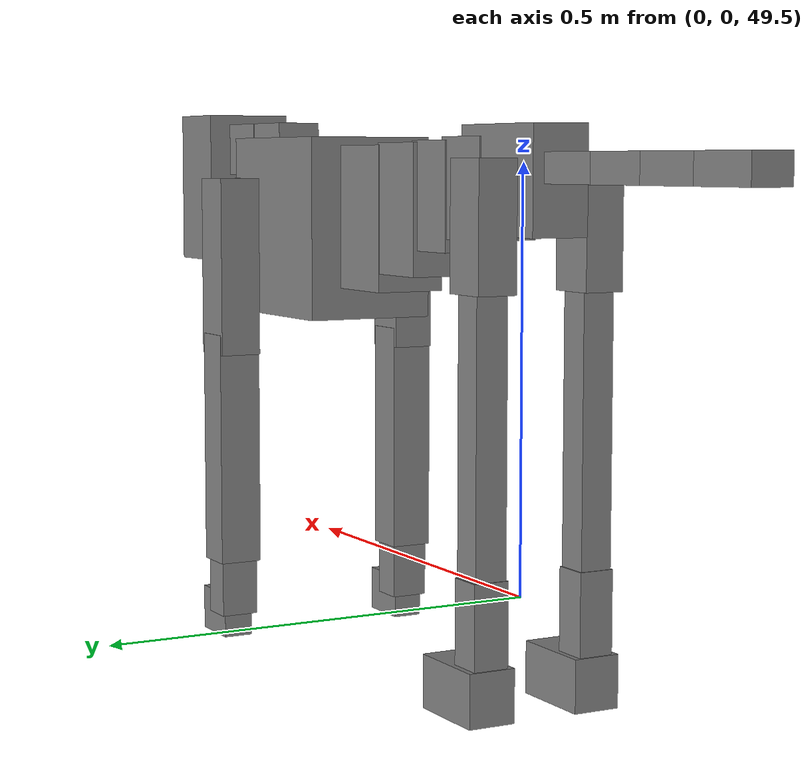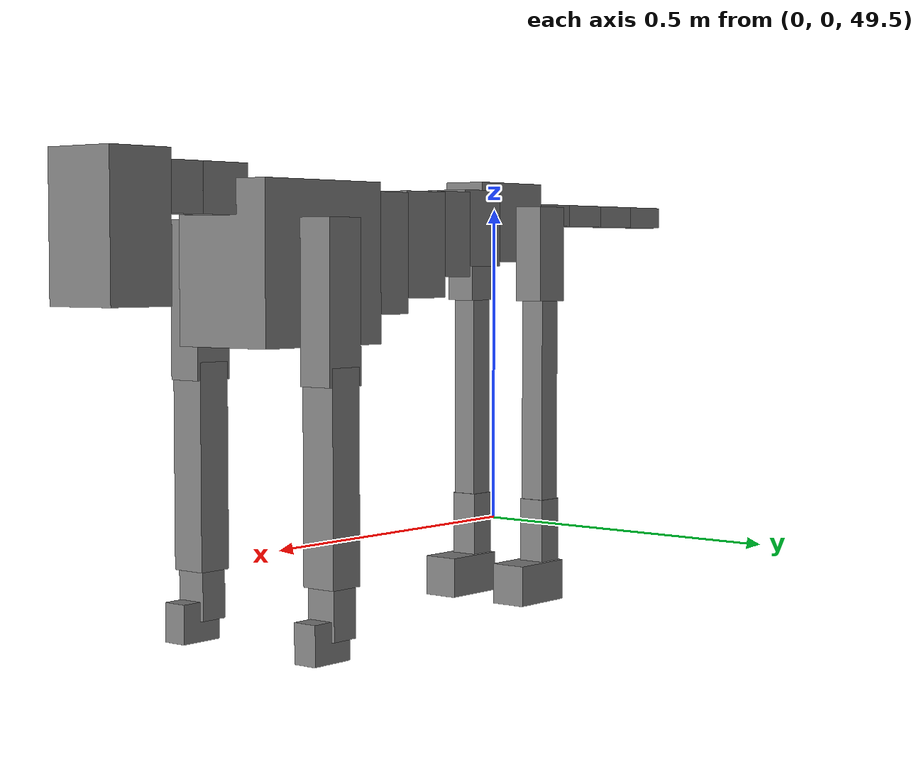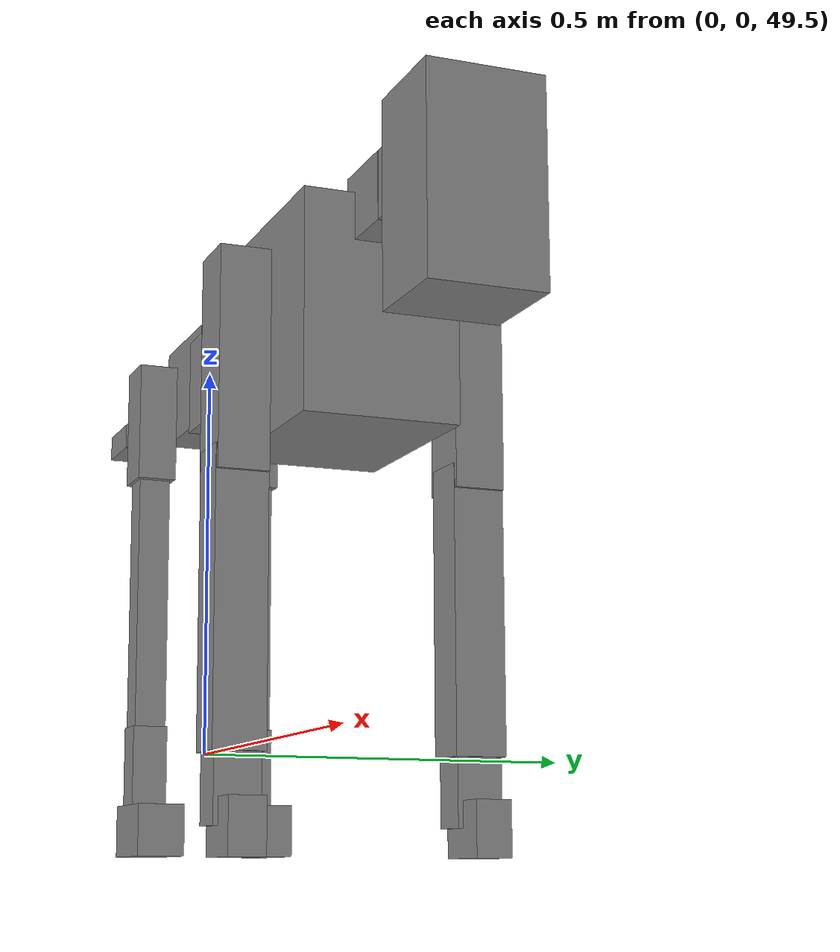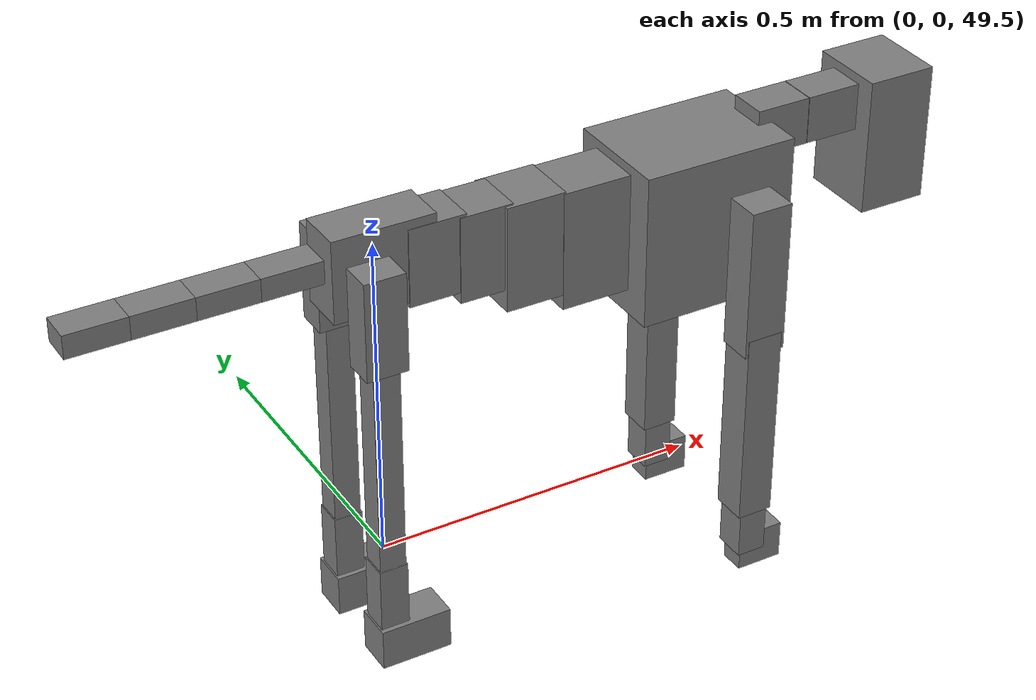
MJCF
<mujoco model="dog">

    <default>
        <joint armature="0.02" stiffness="1" damping="0.2" limited="true"/>
        <geom condim="3" friction="1 0.05 0.05" margin="0.01"/>
        <motor ctrllimited="true" ctrlrange="-1.0 1.0" forcelimited="true" gear="50"/>
    </default>

    <compiler inertiafromgeom="true" angle="radian"/>

    <option timestep="0.016" iterations="50" tolerance="1e-10" solver="Newton" jacobian="dense" cone="pyramidal"/>

    <size nconmax="20000" njmax="60000" nstack="5000000"/>
    <visual>
        <map force="0.1" zfar="30"/>
        <rgba haze="0.15 0.25 0.35 1"/>
        <quality shadowsize="2048"/>
        <global offwidth="800" offheight="800"/>
    </visual>

    <asset>
        <texture type="skybox" builtin="gradient" rgb1="0.3 0.5 0.7" rgb2="0 0 0" width="512" height="512"/>
        <texture name="texplane" type="2d" builtin="checker" rgb1=".2 .3 .4" rgb2=".1 0.15 0.2" width="512" height="512"
                 mark="cross" markrgb=".8 .8 .8"/>
        <texture name="texgeom" type="cube" builtin="flat" mark="cross" width="127" height="1278" rgb1="0.8 0.6 0.4"
                 rgb2="0.8 0.6 0.4" markrgb="1 1 1" random="0.01"/>

        <material name="matplane" reflectance="0.3" texture="texplane" texrepeat="1 1" texuniform="true"/>
        <material name="matgeom" texture="texgeom" texuniform="true" rgba="0.8 0.6 .4 1"/>
    </asset>

    <worldbody>
        <geom name="floor" pos="0 0 0" size="0 0 .25" type="plane" material="matplane" condim="3"/>

        <light directional="false" diffuse=".2 .2 .2" specular="0 0 0" pos="0 0 5" dir="0 0 -1" castshadow="false"/>
        <light mode="targetbodycom" target="torso" directional="false" diffuse=".8 .8 .8" specular="0.3 0.3 0.3"
               pos="0 0 4.0" dir="0 0 -1"/>

        <body name="root" pos="0 0 50">
            <freejoint name="root_1"/>
            <geom type="box" pos="0 0 -0.02" size="0.0774  0.0358  0.063" density="2030"/>

            <body name="spine1" pos="0.054 0 0">
                <joint name="spine1_y" axis="0 1 0" range="0 0.7" limited="true"/>
                <geom type="box" pos="0.02375 0 -0.03" size="0.04375  0.0375  0.05985" density="2030"/>

                <body name="spine2" pos="0.0612 0 0">
                    <joint name="spine2_y" axis="0 1 0" range="-0.15 0.15" limited="true"/>
                    <geom type="box" pos="0.03555  0  -0.04" size="0.04055  0.039  0.06615" density="2030"/>

                    <body name="spine3" pos="0.0730 0 0">
                        <joint name="spine3_y" axis="0 1 0" range="-0.15 0.15" limited="true"/>
                        <geom type="box" pos="0.03555  0  -0.057" size="0.04555  0.0445  0.081" density="2030"/>

                        <body name="spine4" pos="0.0780 0 0">
                            <joint name="spine4_y" axis="0 1 0" range="-0.15 0.15" limited="true"/>
                            <geom type="box" pos="0.05265  0  -0.07" size="0.05265  0.045  0.09135" density="2030"/>

                            <body name="torso" pos="0.1082 0 0">
                                <joint name="torso_y" axis="0 1 0" range="-0.15 0.15" limited="true"/>
                                <geom type="box" pos="0.11925  0  -0.085" size="0.11925  0.085  0.11745"
                                      density="2030"/>

                                <body name="neck1" pos="0.2160  0   0.0180">
                                    <joint name="neck1_y" axis="0 1 0" range="-1.2  -1" limited="true"/>
                                    <geom type="box" pos="0.0423  0  0" size="0.0423  0.03  0.036" density="2325"/>

                                    <body name="neck2" pos="0.0853  0  0">
                                        <joint name="neck2_y" axis="0 1 0" range="0.1  0" limited="true"/>
                                        <geom type="box" pos="0.0423  0  0" size="0.0423  0.03  0.036" density="2325"/>

                                        <body name="head" pos="0.0853  0  0">
                                            <joint name="head_y" axis="0 1 0" range="-0.3  -0.2" limited="true"/>
                                            <geom type="box" pos="0.0531  0  -0.055" size="0.0531  0.06  0.1044"
                                                  density="4030"/>

                                        </body>
                                    </body>
                                </body>

                                <body name="front_shoulder" pos="0.156  0   -0.0480">
                                    <joint name="front_shoulder_y" axis="0 1 0" range="-1 1.5" limited="true"/>
                                    <geom type="box" pos="0 0.13 -0.0901" size="0.0320  0.0273  0.1168" density="1158"/>
                                    <geom type="box" pos="0 -0.13 -0.0901" size="0.0320  0.0273  0.1168"
                                          density="1158"/>

                                    <body name="front_elbow" pos="0  0  -0.1802">
                                        <joint name="front_elbow_y" axis="0 1 0" range="-2 0" limited="true"/>
                                        <geom type="box" pos="0 0.13 -0.1534" size="0.0274  0.0280  0.1534"
                                              density="1081"/>
                                        <geom type="box" pos="0 -0.13 -0.1534" size="0.0274  0.0280  0.1534"
                                              density="1081"/>

                                        <body name="front_wrist" pos="0  0  -0.3067">
                                            <joint name="front_wrist_y" axis="0 1 0" range="-0.2 0" limited="true"/>
                                            <geom type="box" pos="0 0.13 -0.0298" size="0.0223  0.0247  0.0429"
                                                  density="1664"/>
                                            <geom type="box" pos="0 -0.13 -0.0298" size="0.0223  0.0247  0.0429"
                                                  density="1664"/>

                                            <body name="front_finger_end" pos="0  0  -0.0595">
                                                <joint name="front_finger_y" axis="0 1 0" range="-0.4 1"
                                                       limited="true"/>
                                                <geom type="box" pos="0.0195  0.13  -0.0143"
                                                      size="0.0358  0.0195  0.0293" density="1515"/>
                                                <geom type="box" pos="0.0195  -0.13  -0.0143"
                                                      size="0.0358  0.0195  0.0293" density="1515"/>

                                            </body>

                                        </body>
                                    </body>
                                </body>

                            </body>
                        </body>
                    </body>
                </body>
            </body>

            <body name="back_hip" pos="-0.03 0 -0.018">
                <joint name="back_hip_y" axis="0 1 0" range="-1.5 0.3" limited="true"/>
                <geom type="box" pos="0 0.07 -0.0525" size="0.0312  0.0245  0.0753" density="1154"/>
                <geom type="box" pos="0 -0.07 -0.0525" size="0.0312  0.0245  0.0753" density="1154"/>

                <body name="back_knee" pos="0  0  -0.1049">
                    <joint name="back_knee_y" axis="0 1 0" range="0 2.8" limited="true"/>
                    <geom type="box" pos="0 0.07 -0.1771" size="0.0202  0.0199  0.1927" density="1227"/>
                    <geom type="box" pos="0 -0.07 -0.1771" size="0.0202  0.0199  0.1927" density="1227"/>

                    <body name="back_ankle" pos="0  0  -0.3542">
                        <joint name="back_ankle_y" axis="0 1 0" range="-2.2 0" limited="true"/>
                        <geom type="box" pos="0 0.07 -0.0519" size="0.0219  0.0219  0.0631" density="1284"/>
                        <geom type="box" pos="0 -0.07 -0.0519" size="0.0219  0.0219  0.0631" density="1284"/>

                        <body name="back_toe_end" pos="0  0  -0.1038">
                            <joint name="back_toe_y" axis="0 1 0" range="-0.4 1" limited="true"/>
                            <geom type="box" pos="0.0293  0.07  -0.0169" size="0.0537  0.0293  0.0319" density="1515"/>
                            <geom type="box" pos="0.0293  -0.07  -0.0169" size="0.0537  0.0293  0.0319" density="1515"/>

                        </body>
                    </body>
                </body>
            </body>

            <body name="tail1" pos="-0.074 0 -0.006">
                <joint name="tail1_y" axis="0 1 0" range="-0.2 0.2" limited="true"/>
                <geom type="box" pos="-0.0536  0  0" size="0.045  0.025  0.0175" density="1587"/>

                <body name="tail2" pos="-0.09 0 0">
                    <joint name="tail2_y" axis="0 1 0" range="-0.2 0.2" limited="true"/>
                    <geom type="box" pos="-0.0536  0  0" size="0.045  0.025  0.0175" density="1587"/>

                    <body name="tail3" pos="-0.09 0 0">
                        <joint name="tail3_y" axis="0 1 0" range="-0.2 0.2" limited="true"/>
                        <geom type="box" pos="-0.0536  0  0" size="0.045  0.025  0.0175" density="1587"/>

                        <body name="tail4" pos="-0.09 0 0">
                            <joint name="tail4_y" axis="0 1 0" range="-0.2 0.2" limited="true"/>
                            <geom type="box" pos="-0.0536  0  0" size="0.045  0.025  0.0175" density="1587"/>

                        </body>
                    </body>
                </body>
            </body>
        </body>
    </worldbody>

    <actuator>
        <motor joint="spine1_y" forcerange="-150 150     "/>
        <motor joint="spine2_y" forcerange="-150 150     "/>
        <motor joint="spine3_y" forcerange="-150 150     "/>
        <motor joint="spine4_y" forcerange="-150 150     "/>
        <motor joint="torso_y" forcerange="-150 150     "/>
        <motor joint="neck1_y" forcerange="-100 100       "/>
        <motor joint="neck2_y" forcerange="-100 100       "/>
        <motor joint="head_y" forcerange="-150 150       "/>
        <motor joint="front_shoulder_y" forcerange="-129.62 152.57"/>
        <motor joint="front_elbow_y" forcerange="-181.30 122.47"/>
        <motor joint="front_wrist_y" forcerange="-99.05 98.91"/>
        <motor joint="front_finger_y" forcerange="-34.60 29.58"/>
        <motor joint="back_hip_y" forcerange="-312.57 213.84"/>
        <motor joint="back_knee_y" forcerange="-200.46 288.45"/>
        <motor joint="back_angle_y" forcerange="-88.25 161.78"/>
        <motor joint="back_toe_y" forcerange="-31.24 123.18"/>
        <motor joint="tail1_y" forcerange="-50 50     "/>
        <motor joint="tail2_y" forcerange="-50 50     "/>
        <motor joint="tail3_y" forcerange="-50 50     "/>
        <motor joint="tail4_y" forcerange="-50 50     "/>
    </actuator>
</mujoco>
